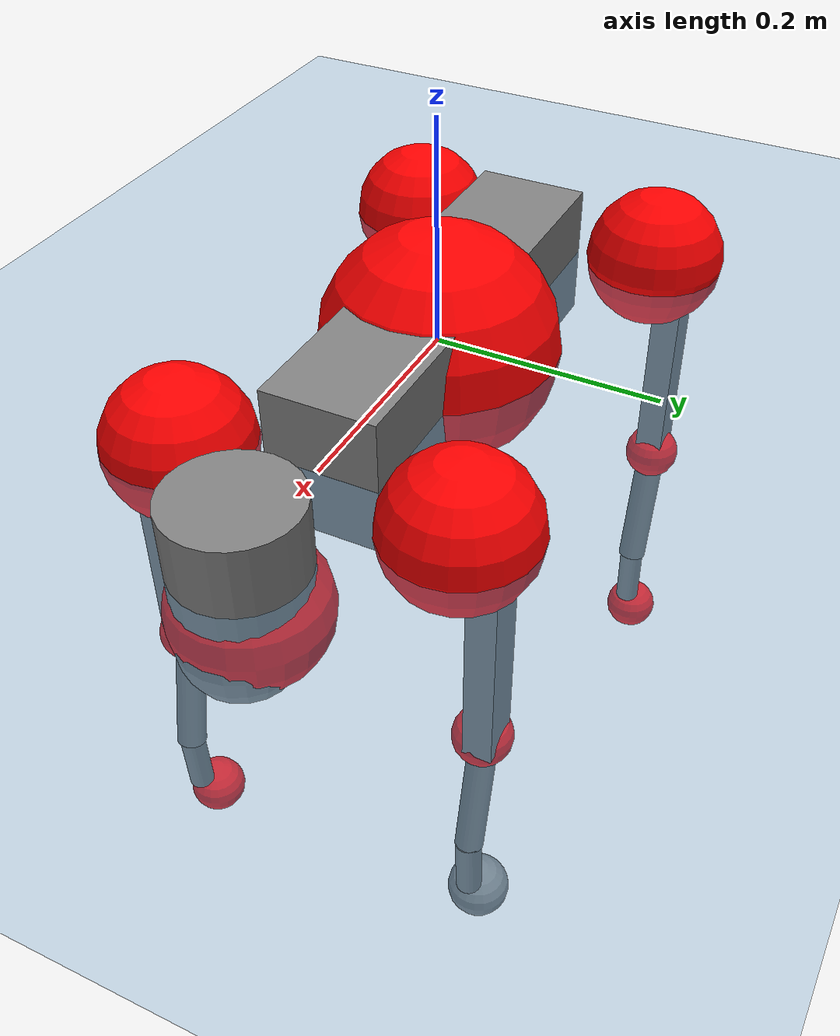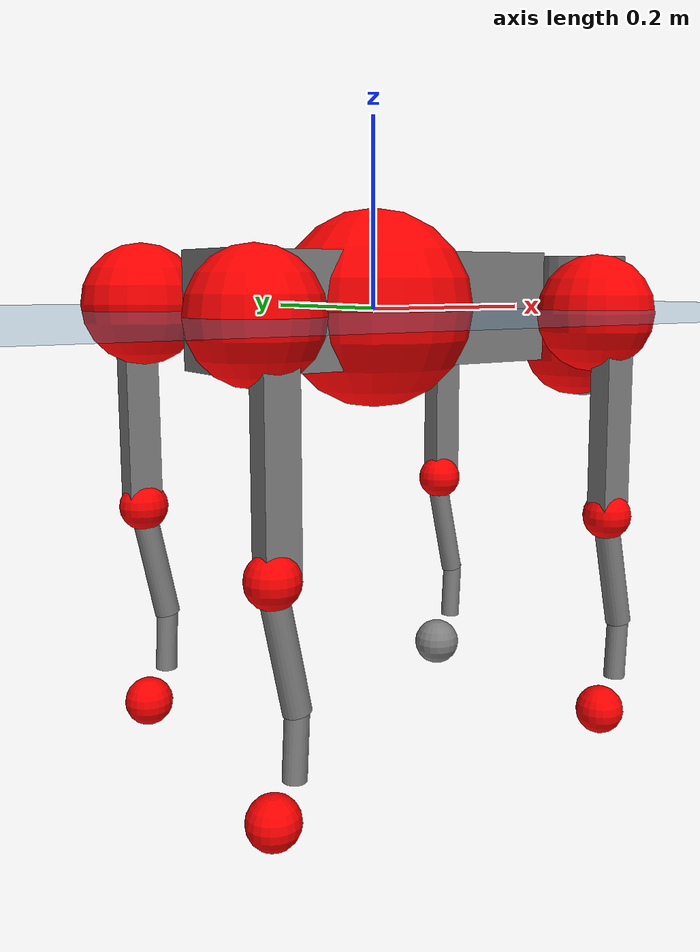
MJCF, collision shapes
<mujoco model="go2">
  <compiler angle="radian" assetdir="assets" balanceinertia="true" inertiafromgeom="false"/>

  <option timestep="0.005" density="1.2" viscosity="2e-05"/>

  <size nkey="1"/>

  <visual>
    <quality shadowsize="8192"/>
    <map shadowclip="0.5"/>
  </visual>

  <default>
    <default class="/">
      <geom contype="0" conaffinity="0" group="1" solref="-1000 -80"/>
      <site size="0.01 0.005 0.005" group="5"/>
      <general forcelimited="true" biastype="affine" gainprm="20" biasprm="0 -20 -0.5"/>
      <default class="go2">
        <joint armature="0.01" damping="0.01" frictionloss="0.2"/>
        <geom condim="1" margin="0.001"/>
        <default class="visual">
          <geom type="mesh" group="2"/>
        </default>
        <default class="collision">
          <geom group="3"/>
          <default class="foot">
            <geom size="0.022 0 0" condim="6" priority="1" friction="0.8 0.02 0.01" solimp="0.015 1 0.022"/>
          </default>
        </default>
        <default class="reward_collision_sphere">
          <geom group="5" rgba="1 0 0 1"/>
        </default>
      </default>
    </default>
  </default>

  <asset>
    <texture type="skybox" colorspace="auto" name="//unnamed_texture_0" builtin="gradient" rgb1="0.95 0.95 0.95" rgb2="0.95 0.95 0.95" width="100" height="600"/>
    <texture type="2d" colorspace="auto" name="texplane" builtin="checker" rgb1="0.345 0.575 0.748" rgb2="0.345 0.575 0.748" markrgb="1 1 1" width="512" height="512"/>
    <material name="MatPlane" class="/" texture="texplane" texuniform="true" texrepeat="2 2" specular="0.9"/>
    <material name="metal" class="/" rgba="0.9 0.95 0.95 1"/>
    <material name="black" class="/" rgba="0 0 0 1"/>
    <material name="white" class="/"/>
    <material name="gray" class="/" rgba="0.671705 0.692426 0.77427 1"/>
    <mesh name="base_0" class="/" file="base_0.obj"/>
    <mesh name="base_1" class="/" file="base_1.obj"/>
    <mesh name="base_2" class="/" file="base_2.obj"/>
    <mesh name="base_3" class="/" file="base_3.obj"/>
    <mesh name="base_4" class="/" file="base_4.obj"/>
    <mesh name="hip_0" class="/" file="hip_0.obj"/>
    <mesh name="hip_1" class="/" file="hip_1.obj"/>
    <mesh name="thigh_0" class="/" file="thigh_0.obj"/>
    <mesh name="thigh_1" class="/" file="thigh_1.obj"/>
    <mesh name="thigh_mirror_0" class="/" file="thigh_mirror_0.obj"/>
    <mesh name="thigh_mirror_1" class="/" file="thigh_mirror_1.obj"/>
    <mesh name="calf_0" class="/" file="calf_0.obj"/>
    <mesh name="calf_1" class="/" file="calf_1.obj"/>
    <mesh name="calf_mirror_0" class="/" file="calf_mirror_0.obj"/>
    <mesh name="calf_mirror_1" class="/" file="calf_mirror_1.obj"/>
    <mesh name="foot" class="/" file="foot.obj"/>
  </asset>

  <worldbody>
    <geom name="floor" class="/" size="100 100 0.125" type="plane" group="0" material="MatPlane"/>
    <light name="toplight_shadow" class="/" pos="0 0 5" dir="0.0990148 0.0990148 -0.990148" type="directional" ambient="0.04 0.04 0.04" diffuse="0.55 0.55 0.55" specular="0.12 0.12 0.12"/>
    <light name="toplight_fill" class="/" pos="0 0 5" dir="0.0990148 0.0990148 -0.990148" type="directional" castshadow="false" ambient="0.04 0.04 0.04" diffuse="0.3 0.3 0.3" specular="0.08 0.08 0.08"/>
    <body name="trunk" childclass="go2" pos="0.00230652 0.00234108 0.000111396" quat="1 -0.000224354 -0.000517356 0.000425783">
      <inertial pos="0.0229669 -0.000601857 -0.00383788" quat="-0.00886197 0.702551 -0.00515696 0.711559" mass="8.43264" diaginertia="0.147664 0.11715 0.0295799"/>
      <joint name="//unnamed_joint_0" type="free" armature="0" damping="0" frictionloss="0"/>
      <geom name="//unnamed_geom_1" class="visual" material="black" mesh="base_0"/>
      <geom name="//unnamed_geom_2" class="visual" material="black" mesh="base_1"/>
      <geom name="//unnamed_geom_3" class="visual" material="black" mesh="base_2"/>
      <geom name="//unnamed_geom_4" class="visual" material="white" mesh="base_3"/>
      <geom name="//unnamed_geom_5" class="visual" material="gray" mesh="base_4"/>
      <geom name="trunk_1" class="collision" size="0.198835 0.0494181 0.0602531" type="box"/>
      <geom name="trunk_2" class="collision" size="0.0528536 0.0475683" pos="0.307907 0 0.0105432" type="cylinder"/>
      <geom name="trunk_3" class="collision" size="0.0496824" pos="0.31655 0 -0.0632593"/>
      <geom name="//unnamed_geom_9" class="reward_collision_sphere" size="0.105707"/>
      <geom name="//unnamed_geom_10" class="reward_collision_sphere" size="0.0634243" pos="0.302506 0 -0.0474445"/>
      <site name="imu" pos="-0.030627 0.0359596 0.0384056" size="0.0105707"/>
      <camera name="track" pos="0 -2.07304 0" quat="0.707107 0.707107 0 0" mode="trackcom"/>
      <camera name="ego_camera" pos="0.337078 0 0.0474445" quat="-0.5 -0.5 0.5 0.5"/>
      <body name="FL_hip" pos="0.208677 0.0491167 0.000355676" quat="0.999994 -0.00128641 0.00116675 -0.00290123">
        <inertial pos="-0.00561396 0.00406959 -0.00214554" quat="0.499196 0.491066 0.502584 0.507018" mass="0.742973" diaginertia="0.00121543 0.000658485 0.000580689"/>
        <joint name="FL_hip_joint" pos="0 0 0" axis="0.999957 0.00881101 0.00279519" range="-1.15144 1.06412" armature="0.00895509" damping="0.0296201" frictionloss="0.186572"/>
        <geom name="//unnamed_geom_11" class="visual" material="metal" mesh="hip_0"/>
        <geom name="//unnamed_geom_12" class="visual" material="gray" mesh="hip_1"/>
        <geom name="//unnamed_geom_13" class="collision" size="0.0486253 0.0211414" pos="0 0.0829215 0" quat="0.707107 0.707107 0 0" type="cylinder"/>
        <geom name="//unnamed_geom_14" class="reward_collision_sphere" size="0.0634243" pos="0 0.0725563 0"/>
        <body name="FL_thigh" pos="-0.000844034 0.0978567 -0.000273965" quat="1 0.000338545 -0.000130811 0.000251501">
          <inertial pos="-0.00467107 -0.0177142 -0.0272483" quat="0.824973 0.088716 -0.0175509 0.55789" mass="1.34476" diaginertia="0.00917955 0.00716209 0.00119952"/>
          <joint name="FL_thigh_joint" pos="0 0 0" axis="-0.0120541 0.999806 0.0155869" range="-1.58572 3.35625" armature="0.0108345" damping="0.0437845" frictionloss="0.208618"/>
          <geom name="//unnamed_geom_15" class="visual" material="metal" mesh="thigh_0"/>
          <geom name="//unnamed_geom_16" class="visual" material="gray" mesh="thigh_1"/>
          <geom name="//unnamed_geom_17" class="collision" size="0.112578 0.0129491 0.0179702" pos="0 0 -0.112285" quat="0.707107 0 0.707107 0" type="box"/>
          <body name="FL_calf" pos="-0.00751914 -0.00599793 -0.226799" quat="1 0.000501251 0.000157883 -9.84106e-05">
            <inertial pos="0.00495961 2.3475e-05 -0.150903" quat="0.710539 -0.00220881 -0.00521127 0.703635" mass="0.267931" diaginertia="0.00215017 0.00171339 6.89823e-05"/>
            <joint name="FL_calf_joint" pos="0 0 0" axis="-0.00312322 0.999978 0.00578258" stiffness="0.0364412" range="-2.7591 -0.747305" armature="0.0110333" damping="0" frictionloss="0.187412"/>
            <geom name="//unnamed_geom_18" class="visual" material="gray" mesh="calf_0"/>
            <geom name="//unnamed_geom_19" class="visual" material="black" mesh="calf_1"/>
            <geom name="FL_calf0" class="collision" size="0.0126849 0.0634243" pos="0.00864301 0 -0.0632593" quat="0.994493 0 -0.104807 0" type="cylinder"/>
            <geom name="//unnamed_geom_21" class="collision" size="0.0116278 0.0343549" pos="0.0216075 0 -0.15604" quat="0.999688 0 0.0249974 0" type="cylinder"/>
            <geom name="//unnamed_geom_22" class="visual" pos="0 0 -0.224571" quat="1 0 0 0" material="black" mesh="foot"/>
            <geom name="FL_foot" class="foot" size="0.0286767" pos="-0.00216075 0 -0.224571"/>
            <geom name="//unnamed_geom_24" class="reward_collision_sphere" size="0.0264268"/>
            <geom name="//unnamed_geom_25" class="reward_collision_sphere" size="0.0264268" pos="-0.00216075 0 -0.224571"/>
            <site name="FL_foot" class="foot" pos="-0.00216075 0 -0.224571" size="0.0105707"/>
          </body>
        </body>
      </body>
      <body name="FR_hip" pos="0.208868 -0.0482748 -0.00578649" quat="1 -0.000517401 0.000110882 -0.00044841">
        <inertial pos="-0.00780577 -7.67675e-05 0.00104067" quat="0.517179 0.486548 0.501067 0.494701" mass="0.749555" diaginertia="0.00121048 0.00066734 0.0005966"/>
        <joint name="FR_hip_joint" pos="0 0 0" axis="0.999994 -0.00271836 -0.00192774" stiffness="0.0155482" range="-1.09926 1.08562" armature="0.0106246" damping="0.000499253" frictionloss="0.226603"/>
        <geom name="//unnamed_geom_26" class="visual" pos="0 -1.55094e-10 -6.65231e-09" quat="4.63268e-05 1 0 0" material="metal" mesh="hip_0"/>
        <geom name="//unnamed_geom_27" class="visual" pos="0 -2.51426e-10 1.64537e-08" quat="4.63268e-05 1 0 0" material="gray" mesh="hip_1"/>
        <geom name="//unnamed_geom_28" class="collision" size="0.0486253 0.0211414" pos="0 -0.0829215 0" quat="0.707107 0.707107 0 0" type="cylinder"/>
        <geom name="//unnamed_geom_29" class="reward_collision_sphere" size="0.0634243" pos="0 -0.0725563 0"/>
        <body name="FR_thigh" pos="-1.26957e-05 -0.0989707 0.00343108" quat="1 0.000442146 -0.000671614 -0.000280345">
          <inertial pos="-0.00449136 0.0234253 -0.0284886" quat="0.53849 -0.0116945 0.0528565 0.840891" mass="1.28989" diaginertia="0.00816408 0.00651355 0.00106702"/>
          <joint name="FR_thigh_joint" pos="0 0 0" axis="0.00602688 -0.99998 -0.00214133" range="-3.37664 1.5049" armature="0.0121942" damping="0.0197442" frictionloss="0.23484"/>
          <geom name="//unnamed_geom_30" class="visual" material="metal" mesh="thigh_mirror_0"/>
          <geom name="//unnamed_geom_31" class="visual" material="gray" mesh="thigh_mirror_1"/>
          <geom name="//unnamed_geom_32" class="collision" size="0.112578 0.0129491 0.0179702" pos="0 0 -0.112285" quat="0.707107 0 0.707107 0" type="box"/>
          <body name="FR_calf" pos="0.00189416 0.00228292 -0.224507" quat="1 -2.11185e-05 -1.08066e-05 -1.28606e-05">
            <inertial pos="0.00913351 0.00112768 -0.156593" quat="0.702296 -0.00367977 0.000163586 0.711875" mass="0.323822" diaginertia="0.00242308 0.00174809 8.05056e-05"/>
            <joint name="FR_calf_joint" pos="0 0 0" axis="0.00827984 -0.999965 -0.00129436" stiffness="0.00285333" range="0.846589 2.72629" armature="0.00904572" damping="0.00514353" frictionloss="0.208907"/>
            <geom name="//unnamed_geom_33" class="visual" material="gray" mesh="calf_mirror_0"/>
            <geom name="//unnamed_geom_34" class="visual" material="black" mesh="calf_mirror_1"/>
            <geom name="FR_calf0" class="collision" size="0.0137419 0.0634243" pos="0.0108038 0 -0.0632593" quat="0.995004 0 -0.0998334 0" type="cylinder"/>
            <geom name="//unnamed_geom_36" class="collision" size="0.0116278 0.0343549" pos="0.0216075 0 -0.15604" quat="0.999688 0 0.0249974 0" type="cylinder"/>
            <geom name="//unnamed_geom_37" class="visual" pos="0 0 -0.224571" quat="1 0 0 0" material="black" mesh="foot"/>
            <geom name="FR_foot" class="foot" size="0.0199214" pos="-0.00216075 0 -0.224571"/>
            <geom name="//unnamed_geom_39" class="reward_collision_sphere" size="0.0264268"/>
            <geom name="//unnamed_geom_40" class="reward_collision_sphere" size="0.0264268" pos="-0.00216075 0 -0.224571"/>
            <site name="FR_foot" class="foot" pos="-0.00216075 0 -0.224571" size="0.0105707"/>
          </body>
        </body>
      </body>
      <body name="RL_hip" pos="-0.21174 0.0477672 0.00582772" quat="1 -0.000250427 -0.000133274 -0.000174794">
        <inertial pos="0.00581948 -3.51594e-06 0.00564958" quat="0.513029 0.501758 0.491709 0.493217" mass="0.728307" diaginertia="0.00119606 0.000708639 0.000622176"/>
        <joint name="RL_hip_joint" pos="0 0 0" axis="-0.999966 -0.00773894 -0.00297108" stiffness="0.00954592" range="-1.18303 0.948078" armature="0.0104729" damping="0.0186075" frictionloss="0.158893"/>
        <geom name="//unnamed_geom_41" class="visual" pos="-2.2698e-10 0 -4.44934e-08" quat="4.63268e-05 0 1 0" material="metal" mesh="hip_0"/>
        <geom name="//unnamed_geom_42" class="visual" pos="-3.67962e-10 0 -3.94593e-08" quat="4.63268e-05 0 1 0" material="gray" mesh="hip_1"/>
        <geom name="//unnamed_geom_43" class="collision" size="0.0486253 0.0211414" pos="0 0.0829215 0" quat="0.707107 0.707107 0 0" type="cylinder"/>
        <geom name="//unnamed_geom_44" class="reward_collision_sphere" size="0.0634243" pos="0 0.0725563 0"/>
        <body name="RL_thigh" pos="0.000990212 0.0959425 0.000645996" quat="1 -2.83181e-05 9.34508e-07 -2.30641e-05">
          <inertial pos="0.000604041 -0.021027 -0.0273758" quat="0.826471 0.108714 -0.0187134 0.552066" mass="1.33296" diaginertia="0.00946744 0.00713044 0.00122976"/>
          <joint name="RL_thigh_joint" pos="0 0 0" axis="-0.0202654 0.999761 -0.0081938" range="-0.424745 4.49374" armature="0.0112663" damping="0.0106543" frictionloss="0.20908"/>
          <geom name="//unnamed_geom_45" class="visual" material="metal" mesh="thigh_0"/>
          <geom name="//unnamed_geom_46" class="visual" material="gray" mesh="thigh_1"/>
          <geom name="//unnamed_geom_47" class="collision" size="0.112578 0.0129491 0.0179702" pos="0 0 -0.112285" quat="0.707107 0 0.707107 0" type="box"/>
          <body name="RL_calf" pos="0.00161778 0.000330751 -0.22195" quat="1 1.11254e-05 -0.000529672 -0.000130045">
            <inertial pos="0.00603344 0.00043163 -0.150855" quat="0.705722 0.00430678 -0.0199424 0.708195" mass="0.292464" diaginertia="0.00219719 0.00175684 6.75199e-05"/>
            <joint name="RL_calf_joint" pos="0 0 0" axis="0.00221125 0.999997 -0.00130441" stiffness="0.0367647" range="-2.69387 -0.835206" armature="0.0114795" damping="0.00239295" frictionloss="0.201949"/>
            <geom name="//unnamed_geom_48" class="visual" material="gray" mesh="calf_0"/>
            <geom name="//unnamed_geom_49" class="visual" material="black" mesh="calf_1"/>
            <geom name="RL_calf0" class="collision" size="0.0137419 0.0634243" pos="0.0108038 0 -0.0632593" quat="0.995004 0 -0.0998334 0" type="cylinder"/>
            <geom name="//unnamed_geom_51" class="collision" size="0.0116278 0.0343549" pos="0.0216075 0 -0.15604" quat="0.999688 0 0.0249974 0" type="cylinder"/>
            <geom name="//unnamed_geom_52" class="visual" pos="0 0 -0.224571" quat="1 0 0 0" material="black" mesh="foot"/>
            <geom name="RL_foot" class="foot" size="0.0236288" pos="-0.00216075 0 -0.224571"/>
            <geom name="//unnamed_geom_54" class="reward_collision_sphere" size="0.0264268"/>
            <geom name="//unnamed_geom_55" class="reward_collision_sphere" size="0.0264268" pos="-0.00216075 0 -0.224571"/>
            <site name="RL_foot" class="foot" pos="-0.00216075 0 -0.224571" size="0.0105707"/>
          </body>
        </body>
      </body>
      <body name="RR_hip" pos="-0.209244 -0.0500495 -0.000709957" quat="1 -5.51481e-05 0.000587433 7.96823e-05">
        <inertial pos="0.00658377 -0.00665709 0.00219758" quat="0.499101 0.498019 0.497525 0.505316" mass="0.872419" diaginertia="0.00136671 0.00074937 0.000675323"/>
        <joint name="RR_hip_joint" pos="0 0 0" axis="-0.999992 -0.00372482 -0.00120319" range="-1.02678 1.1182" armature="0.0107849" damping="0.0356864" frictionloss="0.224605"/>
        <geom name="//unnamed_geom_56" class="visual" pos="2.25462e-10 -1.55094e-10 -3.78411e-08" quat="2.14617e-09 4.63268e-05 4.63268e-05 -1" material="metal" mesh="hip_0"/>
        <geom name="//unnamed_geom_57" class="visual" pos="3.71718e-10 -2.51426e-10 -5.5913e-08" quat="2.14617e-09 4.63268e-05 4.63268e-05 -1" material="gray" mesh="hip_1"/>
        <geom name="//unnamed_geom_58" class="collision" size="0.0486253 0.0211414" pos="0 -0.0829215 0" quat="0.707107 0.707107 0 0" type="cylinder"/>
        <geom name="//unnamed_geom_59" class="reward_collision_sphere" size="0.0634243" pos="0 -0.0725563 0"/>
        <body name="RR_thigh" pos="0.00297019 -0.100174 -0.00577275" quat="1 0.000720251 0.000353182 -0.000177044">
          <inertial pos="-0.00269297 0.020762 -0.0345119" quat="0.553552 -0.0219598 0.0848871 0.828186" mass="1.48841" diaginertia="0.00920545 0.0071206 0.00114499"/>
          <joint name="RR_thigh_joint" pos="0 0 0" axis="0.00396334 -0.999973 -0.00626734" range="-4.42448 0.4261" armature="0.0109792" damping="0.0173723" frictionloss="0.251524"/>
          <geom name="//unnamed_geom_60" class="visual" material="metal" mesh="thigh_mirror_0"/>
          <geom name="//unnamed_geom_61" class="visual" material="gray" mesh="thigh_mirror_1"/>
          <geom name="//unnamed_geom_62" class="collision" size="0.112578 0.0129491 0.0179702" pos="0 0 -0.112285" quat="0.707107 0 0.707107 0" type="box"/>
          <body name="RR_calf" pos="-0.00593484 -0.00219806 -0.223158" quat="1 -0.000162198 0.00073856 0.000596295">
            <inertial pos="0.00808929 0.000607869 -0.148627" quat="0.710612 -0.00152875 -0.00383521 0.703572" mass="0.301629" diaginertia="0.00217947 0.00174568 7.22841e-05"/>
            <joint name="RR_calf_joint" pos="0 0 0" axis="-0.00988623 -0.999935 0.00563692" stiffness="0.015101" range="0.813698 2.70643" armature="0.0104377" damping="0.0431925" frictionloss="0.206755"/>
            <geom name="//unnamed_geom_63" class="visual" material="gray" mesh="calf_mirror_0"/>
            <geom name="//unnamed_geom_64" class="visual" material="black" mesh="calf_mirror_1"/>
            <geom name="RR_calf0" class="collision" size="0.0137419 0.0634243" pos="0.0108038 0 -0.0632593" quat="0.995004 0 -0.0998334 0" type="cylinder"/>
            <geom name="//unnamed_geom_66" class="collision" size="0.0116278 0.0343549" pos="0.0216075 0 -0.15604" quat="0.999688 0 0.0249974 0" type="cylinder"/>
            <geom name="//unnamed_geom_67" class="visual" pos="0 0 -0.224571" quat="1 0 0 0" material="black" mesh="foot"/>
            <geom name="RR_foot" class="foot" size="0.0195201" pos="-0.00216075 0 -0.224571"/>
            <geom name="//unnamed_geom_69" class="reward_collision_sphere" size="0.0264268"/>
            <geom name="//unnamed_geom_70" class="reward_collision_sphere" size="0.0264268" pos="-0.00216075 0 -0.224571"/>
            <site name="RR_foot" class="foot" pos="-0.00216075 0 -0.224571" size="0.0105707"/>
          </body>
        </body>
      </body>
    </body>
  </worldbody>

  <contact>
    <pair class="/" geom1="floor" geom2="FL_foot" name="//unnamed_contact_0"/>
    <pair class="/" geom1="floor" geom2="FR_foot" name="//unnamed_contact_1"/>
    <pair class="/" geom1="floor" geom2="RL_foot" name="//unnamed_contact_2"/>
    <pair class="/" geom1="floor" geom2="RR_foot" name="//unnamed_contact_3"/>
  </contact>

  <actuator>
    <general name="FL_hip" class="/" joint="FL_hip_joint" forcerange="-27.2223 27.2223" gainprm="20.4922" biasprm="0 -20.4922 -0.470586"/>
    <general name="FL_thigh" class="/" joint="FL_thigh_joint" forcerange="-21.1674 21.1674" gainprm="20.4922" biasprm="0 -20.4922 -0.470586"/>
    <general name="FL_calf" class="/" joint="FL_calf_joint" forcerange="-57.1929 57.1929" gainprm="20.4922" biasprm="0 -20.4922 -0.470586"/>
    <general name="FR_hip" class="/" joint="FR_hip_joint" forcerange="-26.98 26.98" gainprm="20.4922" biasprm="0 -20.4922 -0.470586"/>
    <general name="FR_thigh" class="/" joint="FR_thigh_joint" forcerange="-24.0068 24.0068" gainprm="20.4922" biasprm="0 -20.4922 -0.470586"/>
    <general name="FR_calf" class="/" joint="FR_calf_joint" forcerange="-33.861 33.861" gainprm="20.4922" biasprm="0 -20.4922 -0.470586"/>
    <general name="RL_hip" class="/" joint="RL_hip_joint" forcerange="-19.9711 19.9711" gainprm="20.4922" biasprm="0 -20.4922 -0.470586"/>
    <general name="RL_thigh" class="/" joint="RL_thigh_joint" forcerange="-25.1516 25.1516" gainprm="20.4922" biasprm="0 -20.4922 -0.470586"/>
    <general name="RL_calf" class="/" joint="RL_calf_joint" forcerange="-50.8871 50.8871" gainprm="20.4922" biasprm="0 -20.4922 -0.470586"/>
    <general name="RR_hip" class="/" joint="RR_hip_joint" forcerange="-23.8756 23.8756" gainprm="20.4922" biasprm="0 -20.4922 -0.470586"/>
    <general name="RR_thigh" class="/" joint="RR_thigh_joint" forcerange="-31.5085 31.5085" gainprm="20.4922" biasprm="0 -20.4922 -0.470586"/>
    <general name="RR_calf" class="/" joint="RR_calf_joint" forcerange="-54.1831 54.1831" gainprm="20.4922" biasprm="0 -20.4922 -0.470586"/>
  </actuator>

  <sensor>
    <gyro site="imu" name="imu_angular_velocity"/>
    <velocimeter site="imu" name="imu_linear_velocity"/>
    <framelinvel objtype="site" objname="FL_foot" name="FL_foot_global_linear_velocity"/>
    <framelinvel objtype="site" objname="FR_foot" name="FR_foot_global_linear_velocity"/>
    <framelinvel objtype="site" objname="RL_foot" name="RL_foot_global_linear_velocity"/>
    <framelinvel objtype="site" objname="RR_foot" name="RR_foot_global_linear_velocity"/>
  </sensor>

  <keyframe>
    <key name="home" qpos="0 0 0.325 1 0 0 0 0.1 0.8 -1.5 -0.1 -0.8 1.5 -0.1 0.8 -1.5 0.1 -0.8 1.5"/>
  </keyframe>
</mujoco>
